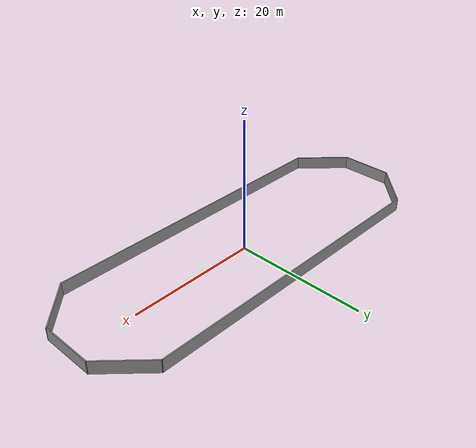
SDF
<?xml version='1.0'?>
<sdf version='1.6'>
  <model name='19052514EdgeWall_2m'>
    <pose frame=''>0 0 0 0 -0 0</pose>
    <link name='Wall_10'>
      <collision name='Wall_10_Collision'>
        <geometry>
          <box>
            <size>8.63528 0.15 2</size>
          </box>
        </geometry>
        <pose frame=''>0 0 1 0 -0 0</pose>
      </collision>
      <visual name='Wall_10_Visual'>
        <pose frame=''>0 0 1 0 -0 0</pose>
        <geometry>
          <box>
            <size>8.63528 0.15 2</size>
          </box>
        </geometry>
        <material>
          <script>
            <uri>file://media/materials/scripts/gazebo.material</uri>
            <name>Gazebo/Grey</name>
          </script>
          <ambient>1 1 1 1</ambient>
        </material>
        <meta>
          <layer>0</layer>
        </meta>
      </visual>
      <pose frame=''>27 -7 0 0 -0 -2.35619</pose>
    </link>
    <link name='Wall_11'>
      <collision name='Wall_11_Collision'>
        <geometry>
          <box>
            <size>48.15 0.15 2</size>
          </box>
        </geometry>
        <pose frame=''>0 0 1 0 -0 0</pose>
      </collision>
      <visual name='Wall_11_Visual'>
        <pose frame=''>0 0 1 0 -0 0</pose>
        <geometry>
          <box>
            <size>48.15 0.15 2</size>
          </box>
        </geometry>
        <material>
          <script>
            <uri>file://media/materials/scripts/gazebo.material</uri>
            <name>Gazebo/Grey</name>
          </script>
          <ambient>1 1 1 1</ambient>
        </material>
        <meta>
          <layer>0</layer>
        </meta>
      </visual>
      <pose frame=''>0 -10 0 0 -0 3.14159</pose>
    </link>
    <link name='Wall_12'>
      <collision name='Wall_12_Collision'>
        <geometry>
          <box>
            <size>8.63528 0.15 2</size>
          </box>
        </geometry>
        <pose frame=''>0 0 1 0 -0 0</pose>
      </collision>
      <visual name='Wall_12_Visual'>
        <pose frame=''>0 0 1 0 -0 0</pose>
        <geometry>
          <box>
            <size>8.63528 0.15 2</size>
          </box>
        </geometry>
        <material>
          <script>
            <uri>file://media/materials/scripts/gazebo.material</uri>
            <name>Gazebo/Grey</name>
          </script>
          <ambient>1 1 1 1</ambient>
        </material>
        <meta>
          <layer>0</layer>
        </meta>
      </visual>
      <pose frame=''>-27 -7 0 0 -0 2.35619</pose>
    </link>
    <link name='Wall_13'>
      <collision name='Wall_13_Collision'>
        <geometry>
          <box>
            <size>8.15 0.15 2</size>
          </box>
        </geometry>
        <pose frame=''>0 0 1 0 -0 0</pose>
      </collision>
      <visual name='Wall_13_Visual'>
        <pose frame=''>0 0 1 0 -0 0</pose>
        <geometry>
          <box>
            <size>8.15 0.15 2</size>
          </box>
        </geometry>
        <material>
          <script>
            <uri>file://media/materials/scripts/gazebo.material</uri>
            <name>Gazebo/Grey</name>
          </script>
          <ambient>1 1 1 1</ambient>
        </material>
        <meta>
          <layer>0</layer>
        </meta>
      </visual>
      <pose frame=''>-30 0 0 0 -0 1.5708</pose>
    </link>
    <link name='Wall_14'>
      <collision name='Wall_14_Collision'>
        <geometry>
          <box>
            <size>8.63528 0.15 2</size>
          </box>
        </geometry>
        <pose frame=''>0 0 1 0 -0 0</pose>
      </collision>
      <visual name='Wall_14_Visual'>
        <pose frame=''>0 0 1 0 -0 0</pose>
        <geometry>
          <box>
            <size>8.63528 0.15 2</size>
          </box>
        </geometry>
        <material>
          <script>
            <uri>file://media/materials/scripts/gazebo.material</uri>
            <name>Gazebo/Grey</name>
          </script>
          <ambient>1 1 1 1</ambient>
        </material>
        <meta>
          <layer>0</layer>
        </meta>
      </visual>
      <pose frame=''>-27 7 0 0 -0 0.785398</pose>
    </link>
    <link name='Wall_7'>
      <collision name='Wall_7_Collision'>
        <geometry>
          <box>
            <size>48.15 0.15 2</size>
          </box>
        </geometry>
        <pose frame=''>0 0 1 0 -0 0</pose>
      </collision>
      <visual name='Wall_7_Visual'>
        <pose frame=''>0 0 1 0 -0 0</pose>
        <geometry>
          <box>
            <size>48.15 0.15 2</size>
          </box>
        </geometry>
        <material>
          <script>
            <uri>file://media/materials/scripts/gazebo.material</uri>
            <name>Gazebo/Grey</name>
          </script>
          <ambient>1 1 1 1</ambient>
        </material>
        <meta>
          <layer>0</layer>
        </meta>
      </visual>
      <pose frame=''>0 10 0 0 -0 0</pose>
    </link>
    <link name='Wall_8'>
      <collision name='Wall_8_Collision'>
        <geometry>
          <box>
            <size>8.63528 0.15 2</size>
          </box>
        </geometry>
        <pose frame=''>0 0 1 0 -0 0</pose>
      </collision>
      <visual name='Wall_8_Visual'>
        <pose frame=''>0 0 1 0 -0 0</pose>
        <geometry>
          <box>
            <size>8.63528 0.15 2</size>
          </box>
        </geometry>
        <material>
          <script>
            <uri>file://media/materials/scripts/gazebo.material</uri>
            <name>Gazebo/Grey</name>
          </script>
          <ambient>1 1 1 1</ambient>
        </material>
        <meta>
          <layer>0</layer>
        </meta>
      </visual>
      <pose frame=''>27 7 0 0 -0 -0.785398</pose>
    </link>
    <link name='Wall_9'>
      <collision name='Wall_9_Collision'>
        <geometry>
          <box>
            <size>8.15 0.15 2</size>
          </box>
        </geometry>
        <pose frame=''>0 0 1 0 -0 0</pose>
      </collision>
      <visual name='Wall_9_Visual'>
        <pose frame=''>0 0 1 0 -0 0</pose>
        <geometry>
          <box>
            <size>8.15 0.15 2</size>
          </box>
        </geometry>
        <material>
          <script>
            <uri>file://media/materials/scripts/gazebo.material</uri>
            <name>Gazebo/Grey</name>
          </script>
          <ambient>1 1 1 1</ambient>
        </material>
        <meta>
          <layer>0</layer>
        </meta>
      </visual>
      <pose frame=''>30 0 0 0 -0 -1.5708</pose>
    </link>
    <static>1</static>
  </model>
</sdf>
